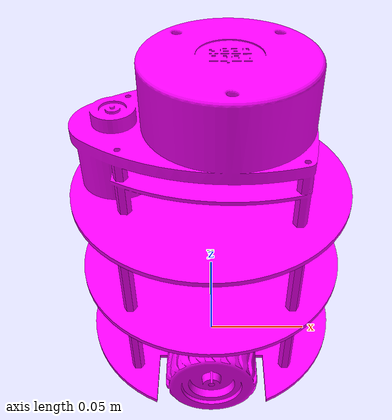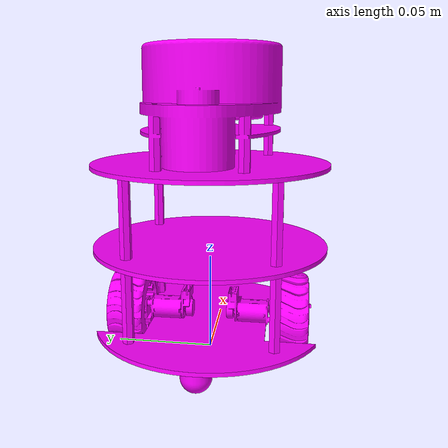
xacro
<?xml version="1.0" ?>
<robot name="auro" xmlns:xacro="http://www.ros.org/wiki/xacro">

<xacro:include filename="$(find auro_description)/urdf/materials.xacro" />
<xacro:include filename="$(find auro_description)/urdf/auro.trans" />
<xacro:include filename="$(find auro_description)/gazebo/auro_material.gazebo" />
<xacro:include filename="$(find auro_description)/gazebo/auro_physics.gazebo" />
<xacro:include filename="$(find auro_description)/gazebo/auro_plugin.gazebo" />
<link name="base_link">
  <inertial>
    <origin rpy="0 0 0" xyz="-1.6741948695112564e-17 -8.370974347556282e-18 0.015"/>
    <mass value="1.020167897667239233"/>
    <inertia ixx="1.1e-05" ixy="-0.0" ixz="-0.0" iyy="2.3e-05" iyz="-0.0" izz="3.4e-05"/>
  </inertial>
  <visual>
    <origin rpy="0 0 0" xyz="0 0 0"/>
    <geometry>
      <mesh filename="package://auro_description/meshes/base_link.stl" scale="0.001 0.001 0.001"/>
    </geometry>
    <material name="silver"/>
  </visual>
  <collision>
    <origin rpy="0 0 0" xyz="0 0 0"/>
    <geometry>
      <mesh filename="package://auro_description/meshes/base_link.stl" scale="0.001 0.001 0.001"/>
    </geometry>
  </collision>
</link>

<link name="stanoff_fl1_1">
  <inertial>
    <origin rpy="0 0 0" xyz="0.034999999999999996 0.034999999999999996 0.006000000000000012"/>
    <mass value="0.007352555678129874"/>
    <inertia ixx="1e-06" ixy="-0.0" ixz="-0.0" iyy="1e-06" iyz="-0.0" izz="0.0"/>
  </inertial>
  <visual>
    <origin rpy="0 0 0" xyz="-0.0 0.0 -0.03"/>
    <geometry>
      <mesh filename="package://auro_description/meshes/stanoff_fl1_1.stl" scale="0.001 0.001 0.001"/>
    </geometry>
    <material name="silver"/>
  </visual>
  <collision>
    <origin rpy="0 0 0" xyz="-0.0 0.0 -0.03"/>
    <geometry>
      <mesh filename="package://auro_description/meshes/stanoff_fl1_1.stl" scale="0.001 0.001 0.001"/>
    </geometry>
  </collision>
</link>

<link name="stanoff_fr1_1">
  <inertial>
    <origin rpy="0 0 0" xyz="0.034999999999999996 -0.035 0.006000000000000012"/>
    <mass value="0.007352555678129874"/>
    <inertia ixx="1e-06" ixy="0.0" ixz="-0.0" iyy="1e-06" iyz="0.0" izz="0.0"/>
  </inertial>
  <visual>
    <origin rpy="0 0 0" xyz="-0.0 0.0 -0.03"/>
    <geometry>
      <mesh filename="package://auro_description/meshes/stanoff_fr1_1.stl" scale="0.001 0.001 0.001"/>
    </geometry>
    <material name="silver"/>
  </visual>
  <collision>
    <origin rpy="0 0 0" xyz="-0.0 0.0 -0.03"/>
    <geometry>
      <mesh filename="package://auro_description/meshes/stanoff_fr1_1.stl" scale="0.001 0.001 0.001"/>
    </geometry>
  </collision>
</link>

<link name="stanoff_bl1_1">
  <inertial>
    <origin rpy="0 0 0" xyz="-0.035 0.035 0.006000000000000012"/>
    <mass value="0.007352555678129874"/>
    <inertia ixx="1e-06" ixy="-0.0" ixz="0.0" iyy="1e-06" iyz="0.0" izz="0.0"/>
  </inertial>
  <visual>
    <origin rpy="0 0 0" xyz="-0.0 0.0 -0.03"/>
    <geometry>
      <mesh filename="package://auro_description/meshes/stanoff_bl1_1.stl" scale="0.001 0.001 0.001"/>
    </geometry>
    <material name="silver"/>
  </visual>
  <collision>
    <origin rpy="0 0 0" xyz="-0.0 0.0 -0.03"/>
    <geometry>
      <mesh filename="package://auro_description/meshes/stanoff_bl1_1.stl" scale="0.001 0.001 0.001"/>
    </geometry>
  </collision>
</link>

<link name="stanoff_br1_1">
  <inertial>
    <origin rpy="0 0 0" xyz="-0.035 -0.035 0.006000000000000012"/>
    <mass value="0.007352555678129874"/>
    <inertia ixx="1e-06" ixy="0.0" ixz="0.0" iyy="1e-06" iyz="-0.0" izz="0.0"/>
  </inertial>
  <visual>
    <origin rpy="0 0 0" xyz="-0.0 0.0 -0.03"/>
    <geometry>
      <mesh filename="package://auro_description/meshes/stanoff_br1_1.stl" scale="0.001 0.001 0.001"/>
    </geometry>
    <material name="silver"/>
  </visual>
  <collision>
    <origin rpy="0 0 0" xyz="-0.0 0.0 -0.03"/>
    <geometry>
      <mesh filename="package://auro_description/meshes/stanoff_br1_1.stl" scale="0.001 0.001 0.001"/>
    </geometry>
  </collision>
</link>

<link name="mid_plate_1">
  <inertial>
    <origin rpy="0 0 0" xyz="-0.035 -0.035 0.04700000000000001"/>
    <mass value="0.026871926921745795"/>
    <inertia ixx="2.4e-05" ixy="-0.0" ixz="-0.0" iyy="2.4e-05" iyz="-0.0" izz="4.8e-05"/>
  </inertial>
  <visual>
    <origin rpy="0 0 0" xyz="-0.035 -0.035 -0.01"/>
    <geometry>
      <mesh filename="package://auro_description/meshes/mid_plate_1.stl" scale="0.001 0.001 0.001"/>
    </geometry>
    <material name="silver"/>
  </visual>
  <collision>
    <origin rpy="0 0 0" xyz="-0.035 -0.035 -0.01"/>
    <geometry>
      <mesh filename="package://auro_description/meshes/mid_plate_1.stl" scale="0.001 0.001 0.001"/>
    </geometry>
  </collision>
</link>

<link name="stanoff_fl2_1">
  <inertial>
    <origin rpy="0 0 0" xyz="0.034999999999999996 0.035 0.06600000000000002"/>
    <mass value="0.007352555678129875"/>
    <inertia ixx="1e-06" ixy="0.0" ixz="-0.0" iyy="1e-06" iyz="0.0" izz="0.0"/>
  </inertial>
  <visual>
    <origin rpy="0 0 0" xyz="-0.0 0.0 -0.012"/>
    <geometry>
      <mesh filename="package://auro_description/meshes/stanoff_fl2_1.stl" scale="0.001 0.001 0.001"/>
    </geometry>
    <material name="silver"/>
  </visual>
  <collision>
    <origin rpy="0 0 0" xyz="-0.0 0.0 -0.012"/>
    <geometry>
      <mesh filename="package://auro_description/meshes/stanoff_fl2_1.stl" scale="0.001 0.001 0.001"/>
    </geometry>
  </collision>
</link>

<link name="stanoff_fr2_1">
  <inertial>
    <origin rpy="0 0 0" xyz="0.034999999999999996 -0.035 0.06600000000000003"/>
    <mass value="0.0073525556781298745"/>
    <inertia ixx="1e-06" ixy="0.0" ixz="-0.0" iyy="1e-06" iyz="0.0" izz="0.0"/>
  </inertial>
  <visual>
    <origin rpy="0 0 0" xyz="-0.0 0.0 -0.012"/>
    <geometry>
      <mesh filename="package://auro_description/meshes/stanoff_fr2_1.stl" scale="0.001 0.001 0.001"/>
    </geometry>
    <material name="silver"/>
  </visual>
  <collision>
    <origin rpy="0 0 0" xyz="-0.0 0.0 -0.012"/>
    <geometry>
      <mesh filename="package://auro_description/meshes/stanoff_fr2_1.stl" scale="0.001 0.001 0.001"/>
    </geometry>
  </collision>
</link>

<link name="stanoff_bl2_1">
  <inertial>
    <origin rpy="0 0 0" xyz="-0.035 0.034999999999999996 0.06600000000000003"/>
    <mass value="0.0073525556781298745"/>
    <inertia ixx="1e-06" ixy="0.0" ixz="-0.0" iyy="1e-06" iyz="0.0" izz="0.0"/>
  </inertial>
  <visual>
    <origin rpy="0 0 0" xyz="-0.0 0.0 -0.012"/>
    <geometry>
      <mesh filename="package://auro_description/meshes/stanoff_bl2_1.stl" scale="0.001 0.001 0.001"/>
    </geometry>
    <material name="silver"/>
  </visual>
  <collision>
    <origin rpy="0 0 0" xyz="-0.0 0.0 -0.012"/>
    <geometry>
      <mesh filename="package://auro_description/meshes/stanoff_bl2_1.stl" scale="0.001 0.001 0.001"/>
    </geometry>
  </collision>
</link>

<link name="stanoff_br2_1">
  <inertial>
    <origin rpy="0 0 0" xyz="-0.034999999999999996 -0.034999999999999996 0.06600000000000002"/>
    <mass value="0.007352555678129875"/>
    <inertia ixx="1e-06" ixy="-0.0" ixz="0.0" iyy="1e-06" iyz="0.0" izz="0.0"/>
  </inertial>
  <visual>
    <origin rpy="0 0 0" xyz="-0.0 0.0 -0.012"/>
    <geometry>
      <mesh filename="package://auro_description/meshes/stanoff_br2_1.stl" scale="0.001 0.001 0.001"/>
    </geometry>
    <material name="silver"/>
  </visual>
  <collision>
    <origin rpy="0 0 0" xyz="-0.0 0.0 -0.012"/>
    <geometry>
      <mesh filename="package://auro_description/meshes/stanoff_br2_1.stl" scale="0.001 0.001 0.001"/>
    </geometry>
  </collision>
</link>

<link name="top_plate_1">
  <inertial>
    <origin rpy="0 0 0" xyz="-0.035 -0.105 0.047000000000000035"/>
    <mass value="0.026871926921745795"/>
    <inertia ixx="2.4e-05" ixy="-0.0" ixz="-0.0" iyy="2.4e-05" iyz="-0.0" izz="4.8e-05"/>
  </inertial>
  <visual>
    <origin rpy="0 0 0" xyz="-0.035 -0.105 -0.052"/>
    <geometry>
      <mesh filename="package://auro_description/meshes/top_plate_1.stl" scale="0.001 0.001 0.001"/>
    </geometry>
    <material name="silver"/>
  </visual>
  <collision>
    <origin rpy="0 0 0" xyz="-0.035 -0.105 -0.052"/>
    <geometry>
      <mesh filename="package://auro_description/meshes/top_plate_1.stl" scale="0.001 0.001 0.001"/>
    </geometry>
  </collision>
</link>

<link name="lidar_v1_1">
  <inertial>
    <origin rpy="0 0 0" xyz="0.00021112268740727469 9.192633575897728e-05 0.0812681842472231"/>
    <mass value="0.3392964352221826"/>
    <inertia ixx="0.000619" ixy="-1e-06" ixz="-0.000159" iyy="0.000967" iyz="3e-06" izz="0.001105"/>
  </inertial>
  <visual>
    <origin rpy="0 0 0" xyz="-0.0 0.0 -0.054"/>
    <geometry>
      <mesh filename="package://auro_description/meshes/lidar_v1_1.stl" scale="0.001 0.001 0.001"/>
    </geometry>
    <material name="silver"/>
  </visual>
  <collision>
    <origin rpy="0 0 0" xyz="-0.0 0.0 -0.054"/>
    <geometry>
      <mesh filename="package://auro_description/meshes/lidar_v1_1.stl" scale="0.001 0.001 0.001"/>
    </geometry>
  </collision>
</link>

<link name="left_motor_link_1">
  <inertial>
    <origin rpy="0 0 0" xyz="2.7070014932313314e-05 0.006829196237379608 -0.008494640498895197"/>
    <mass value="0.020403723434111776"/>
    <inertia ixx="2e-06" ixy="0.0" ixz="-0.0" iyy="0.0" iyz="-0.0" izz="2e-06"/>
  </inertial>
  <visual>
    <origin rpy="0 0 0" xyz="-0.0 0.03 -0.03"/>
    <geometry>
      <mesh filename="package://auro_description/meshes/left_motor_link_1.stl" scale="0.001 0.001 0.001"/>
    </geometry>
    <material name="silver"/>
  </visual>
  <collision>
    <origin rpy="0 0 0" xyz="-0.0 0.03 -0.03"/>
    <geometry>
      <mesh filename="package://auro_description/meshes/left_motor_link_1.stl" scale="0.001 0.001 0.001"/>
    </geometry>
  </collision>
</link>

<link name="right_motor_link_1">
  <inertial>
    <origin rpy="0 0 0" xyz="-2.7071556196283097e-05 -0.006829164377821984 -0.008494634838412188"/>
    <mass value="0.02040379211788625"/>
    <inertia ixx="2e-06" ixy="0.0" ixz="0.0" iyy="0.0" iyz="0.0" izz="2e-06"/>
  </inertial>
  <visual>
    <origin rpy="0 0 0" xyz="-0.0 -0.03 -0.03"/>
    <geometry>
      <mesh filename="package://auro_description/meshes/right_motor_link_1.stl" scale="0.001 0.001 0.001"/>
    </geometry>
    <material name="silver"/>
  </visual>
  <collision>
    <origin rpy="0 0 0" xyz="-0.0 -0.03 -0.03"/>
    <geometry>
      <mesh filename="package://auro_description/meshes/right_motor_link_1.stl" scale="0.001 0.001 0.001"/>
    </geometry>
  </collision>
</link>

<link name="left_wheel_link_1">
  <inertial>
    <origin rpy="0 0 0" xyz="0.0 0.0 0"/>
    <mass value="0.020021601354988396"/>
    <inertia ixx="3e-06" ixy="0.0" ixz="-0.0" iyy="5e-06" iyz="-0.0" izz="3e-06"/>
  </inertial>
  <visual>
    <origin rpy="0 0 0" xyz="-0.0 0.0499 -0.021"/>
    <geometry>
      <mesh filename="package://auro_description/meshes/left_wheel_link_1.stl" scale="0.001 0.001 0.001"/>
    </geometry>
    <material name="silver"/>
  </visual>
  <collision>
    <origin rpy="0 0 0" xyz="-0.0 0.0499 -0.021"/>
    <geometry>
      <mesh filename="package://auro_description/meshes/left_wheel_link_1.stl" scale="0.001 0.001 0.001"/>
    </geometry>
  </collision>
</link>

<link name="right_wheel_link_1">
  <inertial>
    <origin rpy="0 0 0" xyz="-7.404860110866705e-10 -0.007539748519609035 1.1148066488917557e-05"/>
    <mass value="0.020021601354988396"/>
    <inertia ixx="3e-06" ixy="0.0" ixz="0.0" iyy="5e-06" iyz="0.0" izz="3e-06"/>
  </inertial>
  <visual>
    <origin rpy="0 0 0" xyz="0.0 -0.0499 -0.021"/>
    <geometry>
      <mesh filename="package://auro_description/meshes/right_wheel_link_1.stl" scale="0.001 0.001 0.001"/>
    </geometry>
    <material name="silver"/>
  </visual>
  <collision>
    <origin rpy="0 0 0" xyz="0.0 -0.0499 -0.021"/>
    <geometry>
      <mesh filename="package://auro_description/meshes/right_wheel_link_1.stl" scale="0.001 0.001 0.001"/>
    </geometry>
  </collision>
</link>

<link name="caster_1">
  <inertial>
    <origin rpy="0 0 0" xyz="0.0475 1.0926221127947672e-18 -0.019885869565217387"/>
    <mass value="0.005486987919035421"/>
    <inertia ixx="0.0" ixy="-0.0" ixz="0.0" iyy="0.0" iyz="0.0" izz="0.0"/>
  </inertial>
  <visual>
    <origin rpy="0 0 0" xyz="-0.0 0.0 -0.028"/>
    <geometry>
      <mesh filename="package://auro_description/meshes/caster_1.stl" scale="0.001 0.001 0.001"/>
    </geometry>
    <material name="silver"/>
  </visual>
  <collision>
    <origin rpy="0 0 0" xyz="-0.0 0.0 -0.028"/>
    <geometry>
      <mesh filename="package://auro_description/meshes/caster_1.stl" scale="0.001 0.001 0.001"/>
    </geometry>
  </collision>
</link>

<link name="caster_2">
  <inertial>
    <origin rpy="0 0 0" xyz="-0.0475 1.0926221127947672e-18 -0.019885869565217387"/>
    <mass value="0.005486987919035421"/>
    <inertia ixx="0.0" ixy="-0.0" ixz="0.0" iyy="0.0" iyz="0.0" izz="0.0"/>
  </inertial>
  <visual>
    <origin rpy="0 0 0" xyz="-0.0 0.0 -0.028"/>
    <geometry>
      <mesh filename="package://auro_description/meshes/caster_2.stl" scale="0.001 0.001 0.001"/>
    </geometry>
    <material name="silver"/>
  </visual>
  <collision>
    <origin rpy="0 0 0" xyz="-0.0 0.0 -0.028"/>
    <geometry>
      <mesh filename="package://auro_description/meshes/caster_2.stl" scale="0.001 0.001 0.001"/>
    </geometry>
  </collision>
</link>

<joint name="Rigid1" type="fixed">
  <origin rpy="0 0 0" xyz="0.0 0.0 0.03"/>
  <parent link="base_link"/>
  <child link="stanoff_fl1_1"/>
</joint>

<joint name="Rigid2" type="fixed">
  <origin rpy="0 0 0" xyz="0.0 0.0 0.03"/>
  <parent link="base_link"/>
  <child link="stanoff_fr1_1"/>
</joint>

<joint name="Rigid3" type="fixed">
  <origin rpy="0 0 0" xyz="0.0 0.0 0.03"/>
  <parent link="base_link"/>
  <child link="stanoff_bl1_1"/>
</joint>

<joint name="Rigid4" type="fixed">
  <origin rpy="0 0 0" xyz="0.0 0.0 0.03"/>
  <parent link="base_link"/>
  <child link="stanoff_br1_1"/>
</joint>

<joint name="Rigid5" type="fixed">
  <origin rpy="0 0 0" xyz="0.035 0.035 -0.02"/>
  <parent link="stanoff_fl1_1"/>
  <child link="mid_plate_1"/>
</joint>

<joint name="Rigid6" type="fixed">
  <origin rpy="0 0 0" xyz="-0.035 -0.035 0.002"/>
  <parent link="mid_plate_1"/>
  <child link="stanoff_fl2_1"/>
</joint>

<joint name="Rigid7" type="fixed">
  <origin rpy="0 0 0" xyz="-0.035 -0.035 0.002"/>
  <parent link="mid_plate_1"/>
  <child link="stanoff_fr2_1"/>
</joint>

<joint name="Rigid8" type="fixed">
  <origin rpy="0 0 0" xyz="-0.035 -0.035 0.002"/>
  <parent link="mid_plate_1"/>
  <child link="stanoff_bl2_1"/>
</joint>

<joint name="Rigid9" type="fixed">
  <origin rpy="0 0 0" xyz="-0.035 -0.035 0.002"/>
  <parent link="mid_plate_1"/>
  <child link="stanoff_br2_1"/>
</joint>

<joint name="Rigid10" type="fixed">
  <origin rpy="0 0 0" xyz="0.035 0.105 0.04"/>
  <parent link="stanoff_fl2_1"/>
  <child link="top_plate_1"/>
</joint>

<joint name="Rigid20" type="fixed">
  <origin rpy="0 0 0" xyz="-0.035 -0.105 0.002"/>
  <parent link="top_plate_1"/>
  <child link="lidar_v1_1"/>
</joint>

<joint name="Rigid22" type="fixed">
  <origin rpy="0 0 0" xyz="0.0 -0.03 0.03"/>
  <parent link="base_link"/>
  <child link="left_motor_link_1"/>
</joint>

<joint name="Rigid23" type="fixed">
  <origin rpy="0 0 0" xyz="0.0 0.03 0.03"/>
  <parent link="base_link"/>
  <child link="right_motor_link_1"/>
</joint>

<joint name="left_motor_joint" type="continuous">
  <origin rpy="0 0 0" xyz="0.0 -0.0199 -0.009"/>
  <parent link="left_motor_link_1"/>
  <child link="left_wheel_link_1"/>
  <axis xyz="0.0 1.0 0.0"/>
</joint>

<joint name="right_motor_joint" type="continuous">
  <origin rpy="0 0 0" xyz="-0.0 0.0199 -0.009"/>
  <parent link="right_motor_link_1"/>
  <child link="right_wheel_link_1"/>
  <axis xyz="-0.0 1.0 0.0"/>
</joint>

<joint name="Rigid26" type="fixed">
  <origin rpy="0 0 0" xyz="0.0 0.0 0.028"/>
  <parent link="base_link"/>
  <child link="caster_1"/>
</joint>

<joint name="Rigid27" type="fixed">
  <origin rpy="0 0 0" xyz="0.0 0.0 0.028"/>
  <parent link="base_link"/>
  <child link="caster_2"/>
</joint>

</robot>

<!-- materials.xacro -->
<robot name="auro" xmlns:xacro="http://www.ros.org/wiki/xacro" >

<material name="silver">
  <color rgba="1 0 1 1.000"/>
</material>

</robot>

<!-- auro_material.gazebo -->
<robot name="auro" xmlns:xacro="http://www.ros.org/wiki/xacro" >

<xacro:property name="body_color" value="Gazebo/Silver" />
<xacro:property name="wheel_color" value="Gazebo/White" />
<xacro:property name="lidar_color" value="Gazebo/Grey" />
<xacro:property name="scru_color" value="Gazebo/DarkYellow" />
<xacro:property name="plate_color" value="Gazebo/FlatBlack" />
<xacro:property name="motor_color" value="Gazebo/Purple" />
<xacro:property name="caster_color" value="Gazebo/Orange" />
<xacro:property name="body_color" value="Gazebo/Silver" />
<xacro:property name="body_color" value="Gazebo/Silver" />
<xacro:property name="body_color" value="Gazebo/Silver" />

<gazebo reference="base_link">
  <material>${plate_color}</material>
</gazebo>

<gazebo reference="stanoff_fl1_1">
  <material>${scru_color}</material>
</gazebo>

<gazebo reference="stanoff_fr1_1">
  <material>${scru_color}</material>
</gazebo>

<gazebo reference="stanoff_bl1_1">
  <material>${scru_color}</material>
</gazebo>

<gazebo reference="stanoff_br1_1">
  <material>${scru_color}</material>
</gazebo>

<gazebo reference="mid_plate_1">
  <material>${plate_color}</material>
</gazebo>

<gazebo reference="stanoff_fl2_1">
  <material>${scru_color}</material>
</gazebo>

<gazebo reference="stanoff_fr2_1">
  <material>${scru_color}</material>
</gazebo>

<gazebo reference="stanoff_bl2_1">
  <material>${scru_color}</material>
</gazebo>

<gazebo reference="stanoff_br2_1">
  <material>${scru_color}</material>
</gazebo>

<gazebo reference="top_plate_1">
  <material>${plate_color}</material>
</gazebo>

<gazebo reference="lidar_v1_1">
  <material>${lidar_color}</material>
</gazebo>

<gazebo reference="left_motor_link_1">
  <material>${motor_color}</material>
</gazebo>

<gazebo reference="right_motor_link_1">
  <material>${motor_color}</material>
</gazebo>

<gazebo reference="left_wheel_link_1">
  <material>${wheel_color}</material>
</gazebo>

<gazebo reference="right_wheel_link_1">
  <material>${wheel_color}</material>
</gazebo>

<gazebo reference="caster_1">
  <material>${caster_color}</material>
</gazebo>

<gazebo reference="caster_2">
  <material>${caster_color}</material>
</gazebo>

</robot>
